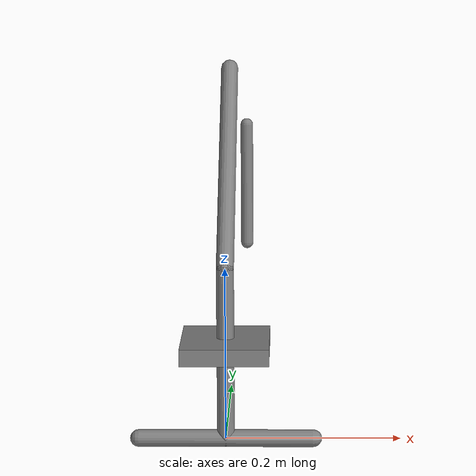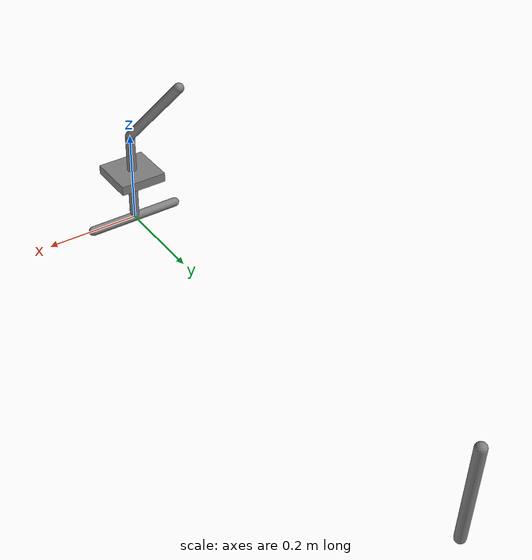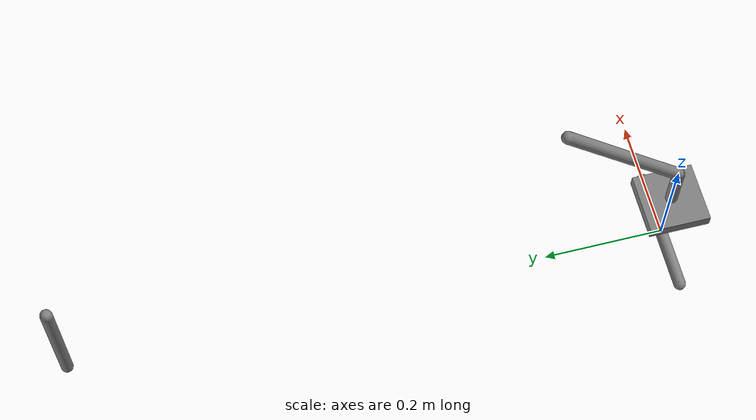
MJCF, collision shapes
<mujoco model="test model">

    <default>
      <geom contype="0" conaffinity="0" type="capsule" size=".01"/>
      <joint type="hinge" axis="1 0 0" damping=".002"/>
      <default class="myo_marker">
          <site size="0.02" group="1" rgba="0.8 0.2 0.6 1"/>
      </default>
    </default>

    <asset>
      <mesh name="cube" file="meshes/cube.stl" scale=".05 .05 .05"/>

      <!-- This skin is generated and saved as a meshes/test_skn.skn file using the following command -->
    </asset>

    <worldbody>
      <body name="box" pos="0 0 .1">
        <joint name="joint_box" limited="true" range="-45 45" stiffness=".01" ref="30" axis="0 0 1" damping="0"/>
        <geom type="box" size=".05 .05 .01" pos="0 0 .01"/>
      </body>

      <body name="body0">
        <geom fromto="0.1 0 0 -.1 0 0"/>
        <site name="site0" pos="0 0 0"/>
        <site name="site1" pos="0 0 .2"/>
      </body>

      <body name="body1" pos="0 0 0">
          <geom fromto="0 0 0 0 0 .2" />
          <joint name="joint1"/>
          <body name="body2" pos="0 0 .2">
            <joint name="joint2"/>
            <geom fromto="0 0 0 0 .2 .2"/>
            <geom pos="0 .2 .2" type="mesh" name="cube" mesh="cube"/>
          </body>
      </body>

      <body name="body3" pos="0 1 0">
          <geom fromto="0 0 0 0 0 .2" />
          <joint name="joint3" type="free" pos="0 0 0"/>
      </body>

    </worldbody>
<actuator>
  <general gear="120" joint="joint1" name="motor1" dyntype="filter"/>
</actuator>
</mujoco>
